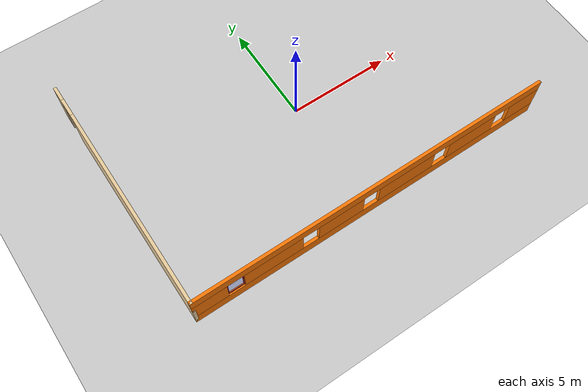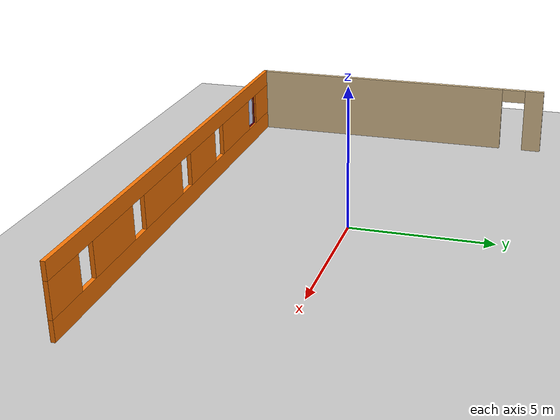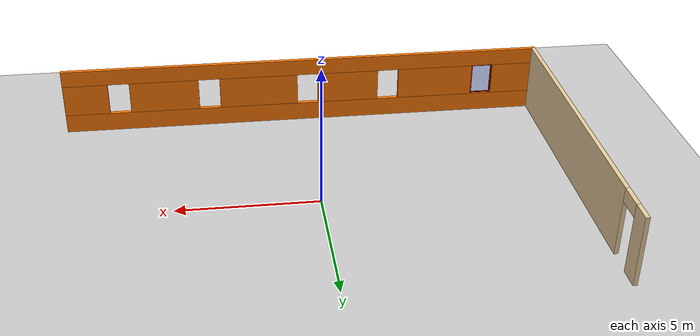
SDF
<sdf version="1.7">
 <world name="lab_world">
  <include><uri>model://sun</uri></include>
  <include><uri>model://ground_plane</uri></include>
  <model name="Wall_0">
   <static>true</static>
   <pose>-8.925 -0.1525 0 0 0 -1.5707963267948966</pose>
   <link name="wall_part_0">
    <pose>-5.5075 0 1.25 0 0 0</pose>
    <collision name="collision_0"><geometry><box><size>0.735 0.15 2.5</size></box></geometry></collision>
    <visual name="visual_0">
     <geometry><box><size>0.735 0.15 2.5</size></box></geometry>
     <material>
      <ambient>0.921569 0.807843 0.615686 1</ambient>
      <diffuse>0.921569 0.807843 0.615686 1</diffuse>
     </material>
    </visual>
   </link>
   <link name="wall_part_1">
    <pose>0.8175 0 1.25 0 0 0</pose>
    <collision name="collision_1"><geometry><box><size>10.115 0.15 2.5</size></box></geometry></collision>
    <visual name="visual_1">
     <geometry><box><size>10.115 0.15 2.5</size></box></geometry>
     <material>
      <ambient>0.921569 0.807843 0.615686 1</ambient>
      <diffuse>0.921569 0.807843 0.615686 1</diffuse>
     </material>
    </visual>
   </link>
   <link name="wall_part_2">
    <pose>-4.69 0 2.25 0 0 0</pose>
    <collision name="collision_2"><geometry><box><size>0.9 0.15 0.5</size></box></geometry></collision>
    <visual name="visual_2">
     <geometry><box><size>0.9 0.15 0.5</size></box></geometry>
     <material>
      <ambient>0.921569 0.807843 0.615686 1</ambient>
      <diffuse>0.921569 0.807843 0.615686 1</diffuse>
     </material>
    </visual>
   </link>
  </model>
  <model name="Wall_2">
   <static>true</static>
   <pose>0 -5.9525 0 0 0 0.0</pose>
   <link name="bottom_strip">
    <pose>0 0 0.35 0 0 0</pose>
    <collision name="bottom_collision"><geometry><box><size>18.0 0.15 0.7</size></box></geometry></collision>
    <visual name="bottom_visual">
     <geometry><box><size>18.0 0.15 0.7</size></box></geometry>
     <material>
      <ambient>0.996078 0.47451 0.0196078 1</ambient>
      <diffuse>0.996078 0.47451 0.0196078 1</diffuse>
     </material>
    </visual>
   </link>
   <link name="middle_segment_0">
    <pose>-8.1725 0 1.2999999999999998 0 0 0</pose>
    <collision name="collision_0">
     <geometry><box><size>1.6549999999999994 0.15 1.2</size></box></geometry>
    </collision>
    <visual name="visual_0">
     <geometry><box><size>1.6549999999999994 0.15 1.2</size></box></geometry>
     <material>
      <ambient>0.996078 0.47451 0.0196078 1</ambient>
      <diffuse>0.996078 0.47451 0.0196078 1</diffuse>
     </material>
    </visual>
   </link>
   <link name="middle_segment_1">
    <pose>-5.109999999999999 0 1.2999999999999998 0 0 0</pose>
    <collision name="collision_1"><geometry><box><size>2.87 0.15 1.2</size></box></geometry></collision>
    <visual name="visual_1">
     <geometry><box><size>2.87 0.15 1.2</size></box></geometry>
     <material>
      <ambient>0.996078 0.47451 0.0196078 1</ambient>
      <diffuse>0.996078 0.47451 0.0196078 1</diffuse>
     </material>
    </visual>
   </link>
   <link name="middle_segment_2">
    <pose>-1.725 0 1.2999999999999998 0 0 0</pose>
    <collision name="collision_2"><geometry><box><size>2.3 0.15 1.2</size></box></geometry></collision>
    <visual name="visual_2">
     <geometry><box><size>2.3 0.15 1.2</size></box></geometry>
     <material>
      <ambient>0.996078 0.47451 0.0196078 1</ambient>
      <diffuse>0.996078 0.47451 0.0196078 1</diffuse>
     </material>
    </visual>
   </link>
   <link name="middle_segment_3">
    <pose>1.695 0 1.2999999999999998 0 0 0</pose>
    <collision name="collision_3"><geometry><box><size>2.94 0.15 1.2</size></box></geometry></collision>
    <visual name="visual_3">
     <geometry><box><size>2.94 0.15 1.2</size></box></geometry>
     <material>
      <ambient>0.996078 0.47451 0.0196078 1</ambient>
      <diffuse>0.996078 0.47451 0.0196078 1</diffuse>
     </material>
    </visual>
   </link>
   <link name="middle_segment_4">
    <pose>5.255 0 1.2999999999999998 0 0 0</pose>
    <collision name="collision_4"><geometry><box><size>2.58 0.15 1.2</size></box></geometry></collision>
    <visual name="visual_4">
     <geometry><box><size>2.58 0.15 1.2</size></box></geometry>
     <material>
      <ambient>0.996078 0.47451 0.0196078 1</ambient>
      <diffuse>0.996078 0.47451 0.0196078 1</diffuse>
     </material>
    </visual>
   </link>
   <link name="middle_segment_5">
    <pose>8.1725 0 1.2999999999999998 0 0 0</pose>
    <collision name="collision_5">
     <geometry><box><size>1.6549999999999994 0.15 1.2</size></box></geometry>
    </collision>
    <visual name="visual_5">
     <geometry><box><size>1.6549999999999994 0.15 1.2</size></box></geometry>
     <material>
      <ambient>0.996078 0.47451 0.0196078 1</ambient>
      <diffuse>0.996078 0.47451 0.0196078 1</diffuse>
     </material>
    </visual>
   </link>
   <link name="top_strip">
    <pose>0 0 2.2 0 0 0</pose>
    <collision name="top_collision">
     <geometry><box><size>18.0 0.15 0.6000000000000001</size></box></geometry>
    </collision>
    <visual name="top_visual">
     <geometry><box><size>18.0 0.15 0.6000000000000001</size></box></geometry>
     <material>
      <ambient>0.996078 0.47451 0.0196078 1</ambient>
      <diffuse>0.996078 0.47451 0.0196078 1</diffuse>
     </material>
    </visual>
   </link>
  </model>
  <model name="Window_2_0">
   <static>true</static>
   <link name="glass">
    <pose>-6.945 -5.9525 1.2999999999999998 0 0 0</pose>
    <collision name="glass_collision"><geometry><box><size>0.8 0.02 1.2</size></box></geometry></collision>
    <visual name="glass_visual">
     <geometry><box><size>0.8 0.02 1.2</size></box></geometry>
     <material><ambient>0.1 0.3 0.9 0.3</ambient><diffuse>0.1 0.3 0.9 0.3</diffuse></material>
    </visual>
   </link>
   <link name="left_frame">
    <pose>-7.32 -5.9525 1.2999999999999998 0 0 0</pose>
    <collision name="left_collision"><geometry><box><size>0.05 0.02 1.2</size></box></geometry></collision>
    <visual name="left_visual">
     <geometry><box><size>0.05 0.02 1.2</size></box></geometry>
     <material><ambient>1 0 0 1</ambient><diffuse>1 0 0 1</diffuse></material>
    </visual>
   </link>
   <link name="right_frame">
    <pose>-6.57 -5.9525 1.2999999999999998 0 0 0</pose>
    <collision name="right_collision"><geometry><box><size>0.05 0.02 1.2</size></box></geometry></collision>
    <visual name="right_visual">
     <geometry><box><size>0.05 0.02 1.2</size></box></geometry>
     <material><ambient>1 0 0 1</ambient><diffuse>1 0 0 1</diffuse></material>
    </visual>
   </link>
   <link name="top_frame">
    <pose>-6.945 -5.9525 1.8749999999999998 0 0 0</pose>
    <collision name="top_collision"><geometry><box><size>0.8 0.02 0.05</size></box></geometry></collision>
    <visual name="top_visual">
     <geometry><box><size>0.8 0.02 0.05</size></box></geometry>
     <material><ambient>1 0 0 1</ambient><diffuse>1 0 0 1</diffuse></material>
    </visual>
   </link>
   <link name="bottom_frame">
    <pose>-6.945 -5.9525 0.7249999999999999 0 0 0</pose>
    <collision name="bottom_collision"><geometry><box><size>0.8 0.02 0.05</size></box></geometry></collision>
    <visual name="bottom_visual">
     <geometry><box><size>0.8 0.02 0.05</size></box></geometry>
     <material><ambient>1 0 0 1</ambient><diffuse>1 0 0 1</diffuse></material>
    </visual>
   </link>
  </model>
 </world>
</sdf>
